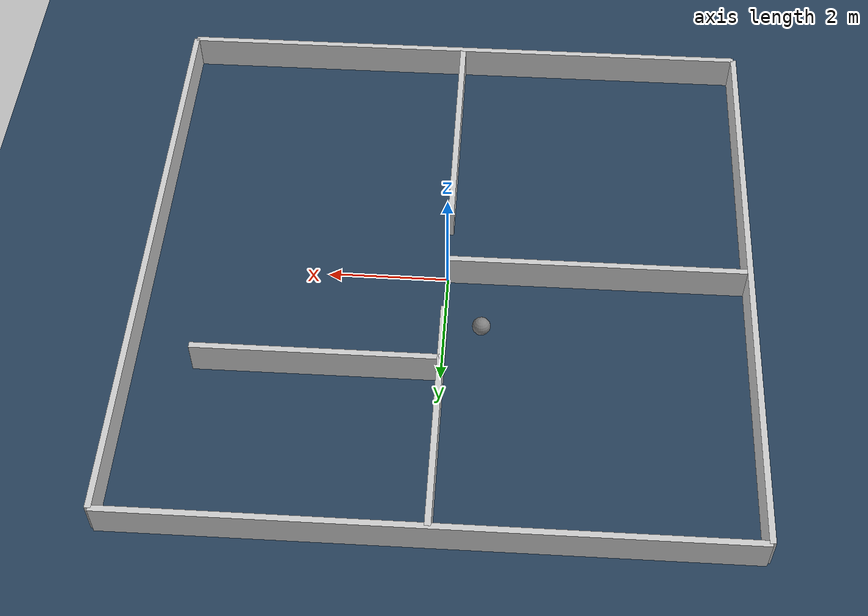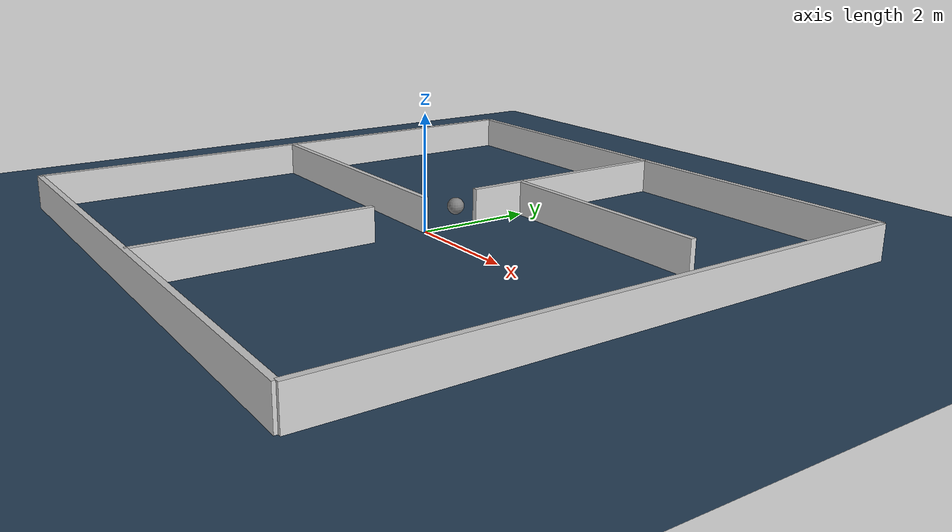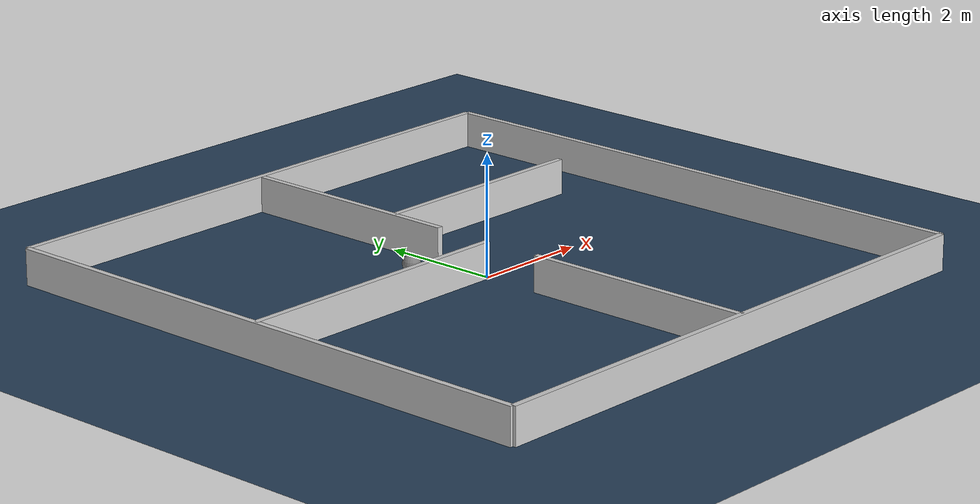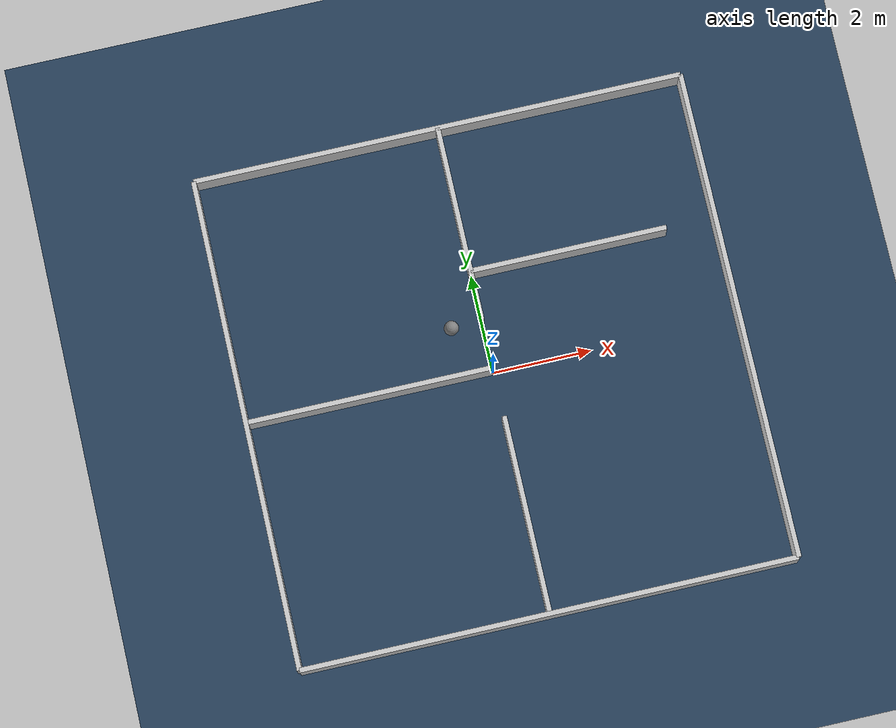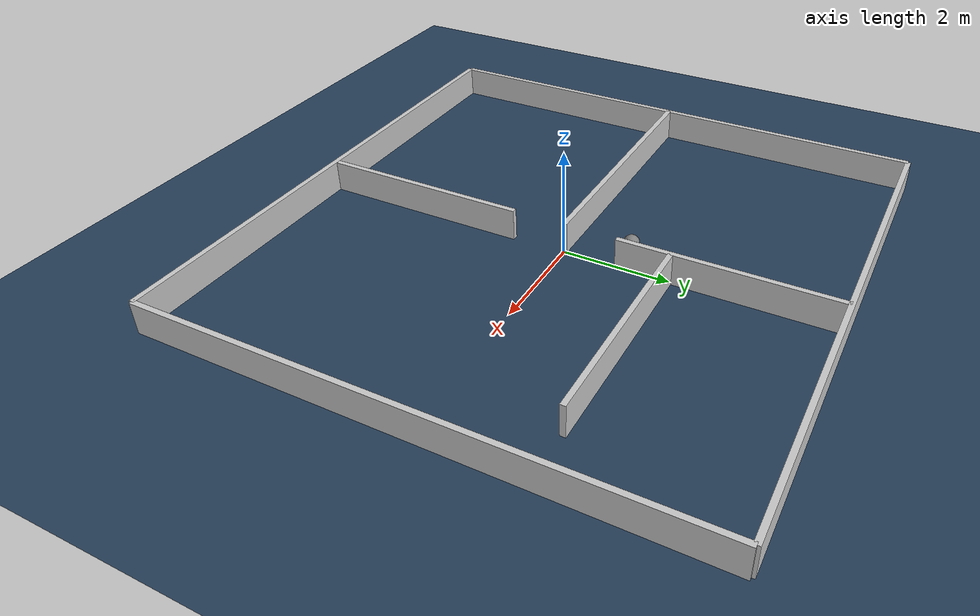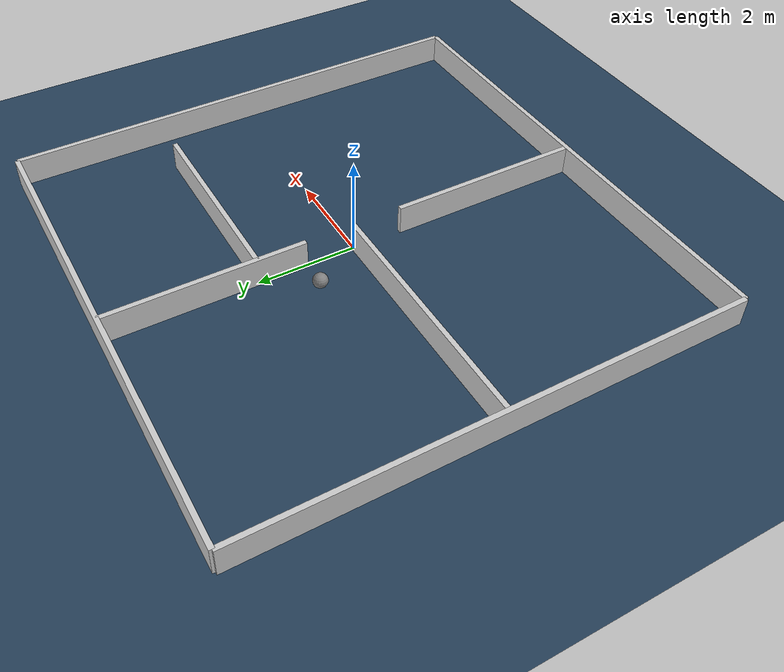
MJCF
<?xml version='1.0' encoding='utf-8'?>
<mujoco model="generated_environment">
  <option timestep="0.01" integrator="RK4" cone="elliptic" />
  <default>
    <geom density="1" />
  </default>
  <asset>
    <texture builtin="gradient" height="3072" rgb1="0.3 0.5 0.7" rgb2="0 0 0" type="skybox" width="512" />
    <texture builtin="checker" height="300" mark="edge" markrgb="0.8 0.8 0.8" name="groundplane" rgb1="0.2 0.3 0.4" rgb2="0.1 0.2 0.3" type="2d" width="300" />
    <material name="groundplane" reflectance="0.2" texrepeat="5 5" texture="groundplane" texuniform="true" />
    <material name="robot" rgba="1.0 1.0 0.0 1.0" />
  </asset>
  <worldbody>
    <light dir="0 0 -1" directional="true" pos="0 0 1.5" />
    <geom condim="4" friction="0.5 0.005 0.001" material="groundplane" name="floor" size="0 0 0.05" type="plane" />
    <body name="walls">
      <geom name="wall_1" condim="4" pos="-5.0 0.0 0.3" rgba="0.800000011920929 0.800000011920929 0.800000011920929 1.0" size="0.05 5.0 0.3" type="box" />
      <geom name="wall_2" condim="4" pos="5.0 0.0 0.3" rgba="0.800000011920929 0.800000011920929 0.800000011920929 1.0" size="0.05 5.0 0.3" type="box" />
      <geom name="wall_3" condim="4" pos="0.0 -5.0 0.3" rgba="0.800000011920929 0.800000011920929 0.800000011920929 1.0" size="5.0 0.05 0.3" type="box" />
      <geom name="wall_4" condim="4" pos="0.0 5.0 0.3" rgba="0.800000011920929 0.800000011920929 0.800000011920929 1.0" size="5.0 0.05 0.3" type="box" />
      <geom name="wall_5" condim="4" pos="0.0 3.0 0.3" rgba="0.800000011920929 0.800000011920929 0.800000011920929 1.0" size="0.05 2.0 0.3" type="box" />
      <geom name="wall_6" condim="4" pos="-2.5 0.0 0.3" rgba="0.800000011920929 0.800000011920929 0.800000011920929 1.0" size="2.5 0.05 0.3" type="box" />
      <geom name="wall_7" condim="4" pos="0.0 -3.0 0.3" rgba="0.800000011920929 0.800000011920929 0.800000011920929 1.0" size="0.05 2.0 0.3" type="box" />
      <geom name="wall_8" condim="4" pos="2.0 2.0 0.3" rgba="0.800000011920929 0.800000011920929 0.800000011920929 1.0" size="2.0 0.05 0.3" type="box" />
    </body>
    <body name="robot">
      <joint name="joint_x" type="slide" pos="0 0 0" axis="1 0 0" />
      <joint name="joint_y" type="slide" pos="0 0 0" axis="0 1 0" />
      <geom name="robot" type="sphere" pos="-0.6144406930357373 1.0368826202973143 0.15" size="0.15 0.15 0.15" mass="5.0" friction="1.0 0.005 0.0001" condim="4" />
    </body>
    </worldbody>
  <actuator>
    <motor name="actuator_x" joint="joint_x" gear="1" ctrlrange="-1 1" />
    <motor name="actuator_y" joint="joint_y" gear="1" ctrlrange="-1 1" />
  </actuator>
</mujoco>
